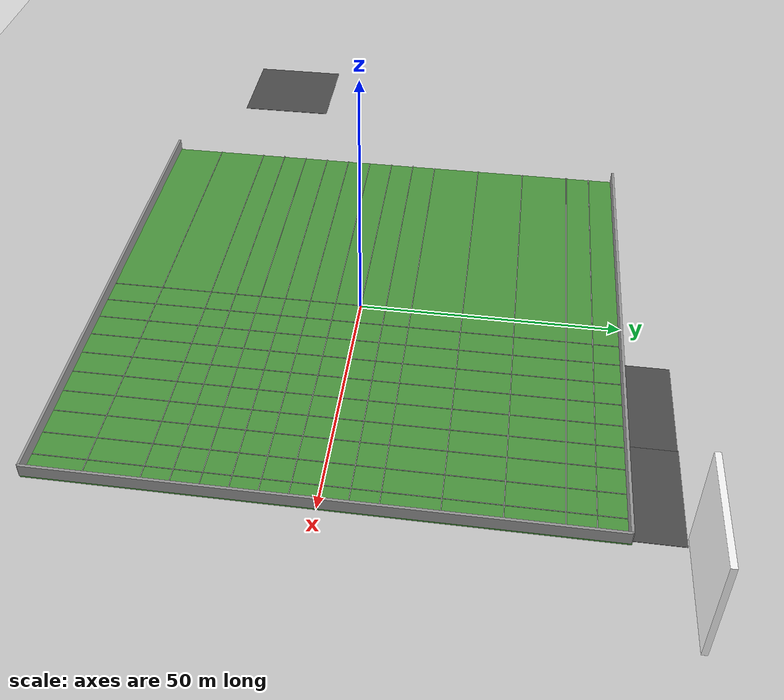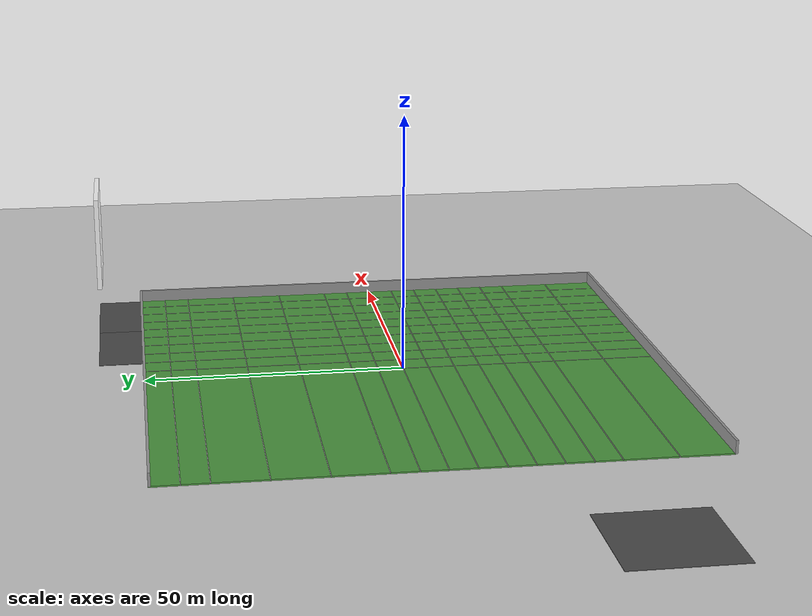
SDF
<sdf version="1.7">
 <world name="default">
  <model name="ground_plane">
   <static>1</static>
   <link name="link">
    <collision name="collision">
     <geometry><plane><normal>0 0 1</normal><size>100 100</size></plane></geometry>
     <surface><friction><ode><mu>100</mu><mu2>50</mu2></ode></friction></surface>
    </collision>
    <visual name="visual">
     <cast_shadows>0</cast_shadows>
     <geometry><plane><normal>0 0 1</normal><size>100 100</size></plane></geometry>
     <material>
      <script><uri>file://media/materials/scripts/gazebo.material</uri><name>Gazebo/Grey</name></script>
     </material>
    </visual>
   </link>
  </model>
  <model name="gridline100m">
   <pose>0.007876 -6.97538 0 0 -0 0</pose>
   <link name="Wall_2">
    <collision name="Wall_2_Collision">
     <geometry><box><size>100 0.15 0.15</size></box></geometry>
     <pose>0 0 0.075 0 -0 0</pose>
    </collision>
    <visual name="Wall_2_Visual">
     <pose>0 0 0.075 0 -0 0</pose>
     <geometry><box><size>100 0.15 0.15</size></box></geometry>
     <material>
      <script><uri>file://media/materials/scripts/gazebo.material</uri><name>Gazebo/Grey</name></script>
      <ambient>0 0 0 1</ambient>
     </material>
     <meta><layer>0</layer></meta>
    </visual>
    <pose>2e-06 -3.05812 0 0 -0 0</pose>
   </link>
   <static>1</static>
  </model>
  <model name="gridline100m_clone">
   <pose>0.013 3.08479 0 0 -0 0</pose>
   <link name="Wall_2">
    <collision name="Wall_2_Collision">
     <geometry><box><size>100 0.15 0.15</size></box></geometry>
     <pose>0 0 0.075 0 -0 0</pose>
    </collision>
    <visual name="Wall_2_Visual">
     <pose>0 0 0.075 0 -0 0</pose>
     <geometry><box><size>100 0.15 0.15</size></box></geometry>
     <material>
      <script><uri>file://media/materials/scripts/gazebo.material</uri><name>Gazebo/Grey</name></script>
      <ambient>0 0 0 1</ambient>
     </material>
     <meta><layer>0</layer></meta>
    </visual>
    <pose>2e-06 -3.05812 0 0 -0 0</pose>
   </link>
   <static>1</static>
  </model>
  <model name="gridline100m_clone_0">
   <pose>-0.011254 13.0129 0 0 -0 0</pose>
   <link name="Wall_2">
    <collision name="Wall_2_Collision">
     <geometry><box><size>100 0.15 0.15</size></box></geometry>
     <pose>0 0 0.075 0 -0 0</pose>
    </collision>
    <visual name="Wall_2_Visual">
     <pose>0 0 0.075 0 -0 0</pose>
     <geometry><box><size>100 0.15 0.15</size></box></geometry>
     <material>
      <script><uri>file://media/materials/scripts/gazebo.material</uri><name>Gazebo/Grey</name></script>
      <ambient>0 0 0 1</ambient>
     </material>
     <meta><layer>0</layer></meta>
    </visual>
    <pose>2e-06 -3.05812 0 0 -0 0</pose>
   </link>
   <static>1</static>
  </model>
  <model name="gridline100m_clone_0_clone">
   <link name="Wall_2">
    <pose>2e-06 -3.05812 0 0 -0 1.571</pose>
    <inertial>
     <mass>1</mass>
     <inertia><ixx>1</ixx><ixy>0</ixy><ixz>0</ixz><iyy>1</iyy><iyz>0</iyz><izz>1</izz></inertia>
    </inertial>
    <visual name="Wall_2_Visual">
     <pose>0 0 0.075 0 -0 0</pose>
     <geometry><box><size>100 0.15 0.15</size></box></geometry>
     <material>
      <script><uri>file://media/materials/scripts/gazebo.material</uri><name>Gazebo/Grey</name></script>
      <ambient>0 0 0 1</ambient>
      <shader type="pixel"><normal_map>__default__</normal_map></shader>
      <diffuse>0.7 0.7 0.7 1</diffuse>
      <specular>0.01 0.01 0.01 1</specular>
      <emissive>0 0 0 1</emissive>
     </material>
     <meta><layer>0</layer></meta>
     <cast_shadows>0</cast_shadows>
    </visual>
    <collision name="Wall_2_Collision">
     <pose>0 0 0.075 0 -0 0</pose>
     <geometry><box><size>100 0.15 0.15</size></box></geometry>
     <surface>
      <friction>
       <ode><mu>1</mu><mu2>1</mu2><fdir1>0 0 0</fdir1><slip1>0</slip1><slip2>0</slip2></ode>
       <torsional>
        <coefficient>1</coefficient>
        <patch_radius>0</patch_radius>
        <surface_radius>0</surface_radius>
        <use_patch_radius>1</use_patch_radius>
        <ode><slip>0</slip></ode>
       </torsional>
      </friction>
      <bounce><restitution_coefficient>0</restitution_coefficient><threshold>1e+06</threshold></bounce>
      <contact>
       <collide_without_contact>0</collide_without_contact>
       <collide_without_contact_bitmask>1</collide_without_contact_bitmask>
       <collide_bitmask>1</collide_bitmask>
       <ode>
        <soft_cfm>0</soft_cfm>
        <soft_erp>0.2</soft_erp>
        <kp>1e+13</kp>
        <kd>1</kd>
        <max_vel>0.01</max_vel>
        <min_depth>0</min_depth>
       </ode>
       <bullet>
        <split_impulse>1</split_impulse>
        <split_impulse_penetration_threshold>-0.01</split_impulse_penetration_threshold>
        <soft_cfm>0</soft_cfm>
        <soft_erp>0.2</soft_erp>
        <kp>1e+13</kp>
        <kd>1</kd>
       </bullet>
      </contact>
     </surface>
    </collision>
   </link>
   <static>1</static>
   <pose>9.93727 3.17557 0 0 -0 0</pose>
  </model>
  <model name="gridline100m_clone_0_clone_clone">
   <link name="Wall_2">
    <pose>2e-06 -3.05812 0 0 -0 1.571</pose>
    <inertial>
     <mass>1</mass>
     <inertia><ixx>1</ixx><ixy>0</ixy><ixz>0</ixz><iyy>1</iyy><iyz>0</iyz><izz>1</izz></inertia>
    </inertial>
    <visual name="Wall_2_Visual">
     <pose>0 0 0.075 0 -0 0</pose>
     <geometry><box><size>100 0.15 0.15</size></box></geometry>
     <material>
      <script><uri>file://media/materials/scripts/gazebo.material</uri><name>Gazebo/Grey</name></script>
      <ambient>0 0 0 1</ambient>
      <shader type="pixel"><normal_map>__default__</normal_map></shader>
      <diffuse>0.7 0.7 0.7 1</diffuse>
      <specular>0.01 0.01 0.01 1</specular>
      <emissive>0 0 0 1</emissive>
     </material>
     <meta><layer>0</layer></meta>
     <cast_shadows>0</cast_shadows>
    </visual>
    <collision name="Wall_2_Collision">
     <pose>0 0 0.075 0 -0 0</pose>
     <geometry><box><size>100 0.15 0.15</size></box></geometry>
     <surface>
      <friction>
       <ode><mu>1</mu><mu2>1</mu2><fdir1>0 0 0</fdir1><slip1>0</slip1><slip2>0</slip2></ode>
       <torsional>
        <coefficient>1</coefficient>
        <patch_radius>0</patch_radius>
        <surface_radius>0</surface_radius>
        <use_patch_radius>1</use_patch_radius>
        <ode><slip>0</slip></ode>
       </torsional>
      </friction>
      <bounce><restitution_coefficient>0</restitution_coefficient><threshold>1e+06</threshold></bounce>
      <contact>
       <collide_without_contact>0</collide_without_contact>
       <collide_without_contact_bitmask>1</collide_without_contact_bitmask>
       <collide_bitmask>1</collide_bitmask>
       <ode>
        <soft_cfm>0</soft_cfm>
        <soft_erp>0.2</soft_erp>
        <kp>1e+13</kp>
        <kd>1</kd>
        <max_vel>0.01</max_vel>
        <min_depth>0</min_depth>
       </ode>
       <bullet>
        <split_impulse>1</split_impulse>
        <split_impulse_penetration_threshold>-0.01</split_impulse_penetration_threshold>
        <soft_cfm>0</soft_cfm>
        <soft_erp>0.2</soft_erp>
        <kp>1e+13</kp>
        <kd>1</kd>
       </bullet>
      </contact>
     </surface>
    </collision>
   </link>
   <static>1</static>
   <pose>-0.105326 3.11667 0 0 -0 0</pose>
  </model>
  <model name="gridline100m_clone_0_clone_clone_1">
   <link name="Wall_2">
    <pose>2e-06 -3.05812 0 0 -0 1.571</pose>
    <inertial>
     <mass>1</mass>
     <inertia><ixx>1</ixx><ixy>0</ixy><ixz>0</ixz><iyy>1</iyy><iyz>0</iyz><izz>1</izz></inertia>
    </inertial>
    <visual name="Wall_2_Visual">
     <pose>0 0 0.075 0 -0 0</pose>
     <geometry><box><size>100 0.15 0.15</size></box></geometry>
     <material>
      <script><uri>file://media/materials/scripts/gazebo.material</uri><name>Gazebo/Grey</name></script>
      <ambient>0 0 0 1</ambient>
      <shader type="pixel"><normal_map>__default__</normal_map></shader>
      <diffuse>0.7 0.7 0.7 1</diffuse>
      <specular>0.01 0.01 0.01 1</specular>
      <emissive>0 0 0 1</emissive>
     </material>
     <meta><layer>0</layer></meta>
     <cast_shadows>0</cast_shadows>
    </visual>
    <collision name="Wall_2_Collision">
     <pose>0 0 0.075 0 -0 0</pose>
     <geometry><box><size>100 0.15 0.15</size></box></geometry>
     <surface>
      <friction>
       <ode><mu>1</mu><mu2>1</mu2><fdir1>0 0 0</fdir1><slip1>0</slip1><slip2>0</slip2></ode>
       <torsional>
        <coefficient>1</coefficient>
        <patch_radius>0</patch_radius>
        <surface_radius>0</surface_radius>
        <use_patch_radius>1</use_patch_radius>
        <ode><slip>0</slip></ode>
       </torsional>
      </friction>
      <bounce><restitution_coefficient>0</restitution_coefficient><threshold>1e+06</threshold></bounce>
      <contact>
       <collide_without_contact>0</collide_without_contact>
       <collide_without_contact_bitmask>1</collide_without_contact_bitmask>
       <collide_bitmask>1</collide_bitmask>
       <ode>
        <soft_cfm>0</soft_cfm>
        <soft_erp>0.2</soft_erp>
        <kp>1e+13</kp>
        <kd>1</kd>
        <max_vel>0.01</max_vel>
        <min_depth>0</min_depth>
       </ode>
       <bullet>
        <split_impulse>1</split_impulse>
        <split_impulse_penetration_threshold>-0.01</split_impulse_penetration_threshold>
        <soft_cfm>0</soft_cfm>
        <soft_erp>0.2</soft_erp>
        <kp>1e+13</kp>
        <kd>1</kd>
       </bullet>
      </contact>
     </surface>
    </collision>
   </link>
   <static>1</static>
   <pose>20.1147 3.10463 0 0 -0 0</pose>
  </model>
  <model name="gridline100m_clone_0_clone_clone_1_clone">
   <link name="Wall_2">
    <pose>2e-06 -3.05812 0 0 -0 1.571</pose>
    <inertial>
     <mass>1</mass>
     <inertia><ixx>1</ixx><ixy>0</ixy><ixz>0</ixz><iyy>1</iyy><iyz>0</iyz><izz>1</izz></inertia>
    </inertial>
    <visual name="Wall_2_Visual">
     <pose>0 0 0.075 0 -0 0</pose>
     <geometry><box><size>100 0.15 0.15</size></box></geometry>
     <material>
      <script><uri>file://media/materials/scripts/gazebo.material</uri><name>Gazebo/Grey</name></script>
      <ambient>0 0 0 1</ambient>
      <shader type="pixel"><normal_map>__default__</normal_map></shader>
      <diffuse>0.7 0.7 0.7 1</diffuse>
      <specular>0.01 0.01 0.01 1</specular>
      <emissive>0 0 0 1</emissive>
     </material>
     <meta><layer>0</layer></meta>
     <cast_shadows>0</cast_shadows>
    </visual>
    <collision name="Wall_2_Collision">
     <pose>0 0 0.075 0 -0 0</pose>
     <geometry><box><size>100 0.15 0.15</size></box></geometry>
     <surface>
      <friction>
       <ode><mu>1</mu><mu2>1</mu2><fdir1>0 0 0</fdir1><slip1>0</slip1><slip2>0</slip2></ode>
       <torsional>
        <coefficient>1</coefficient>
        <patch_radius>0</patch_radius>
        <surface_radius>0</surface_radius>
        <use_patch_radius>1</use_patch_radius>
        <ode><slip>0</slip></ode>
       </torsional>
      </friction>
      <bounce><restitution_coefficient>0</restitution_coefficient><threshold>1e+06</threshold></bounce>
      <contact>
       <collide_without_contact>0</collide_without_contact>
       <collide_without_contact_bitmask>1</collide_without_contact_bitmask>
       <collide_bitmask>1</collide_bitmask>
       <ode>
        <soft_cfm>0</soft_cfm>
        <soft_erp>0.2</soft_erp>
        <kp>1e+13</kp>
        <kd>1</kd>
        <max_vel>0.01</max_vel>
        <min_depth>0</min_depth>
       </ode>
       <bullet>
        <split_impulse>1</split_impulse>
        <split_impulse_penetration_threshold>-0.01</split_impulse_penetration_threshold>
        <soft_cfm>0</soft_cfm>
        <soft_erp>0.2</soft_erp>
        <kp>1e+13</kp>
        <kd>1</kd>
       </bullet>
      </contact>
     </surface>
    </collision>
   </link>
   <static>1</static>
   <pose>30.2145 3.13489 0 0 -0 0</pose>
  </model>
  <model name="gridline100m_clone_0_clone_clone_1_clone_clone">
   <link name="Wall_2">
    <pose>2e-06 -3.05812 0 0 -0 1.571</pose>
    <inertial>
     <mass>1</mass>
     <inertia><ixx>1</ixx><ixy>0</ixy><ixz>0</ixz><iyy>1</iyy><iyz>0</iyz><izz>1</izz></inertia>
    </inertial>
    <visual name="Wall_2_Visual">
     <pose>0 0 0.075 0 -0 0</pose>
     <geometry><box><size>100 0.15 0.15</size></box></geometry>
     <material>
      <script><uri>file://media/materials/scripts/gazebo.material</uri><name>Gazebo/Grey</name></script>
      <ambient>0 0 0 1</ambient>
      <shader type="pixel"><normal_map>__default__</normal_map></shader>
      <diffuse>0.7 0.7 0.7 1</diffuse>
      <specular>0.01 0.01 0.01 1</specular>
      <emissive>0 0 0 1</emissive>
     </material>
     <meta><layer>0</layer></meta>
     <cast_shadows>0</cast_shadows>
    </visual>
    <collision name="Wall_2_Collision">
     <pose>0 0 0.075 0 -0 0</pose>
     <geometry><box><size>100 0.15 0.15</size></box></geometry>
     <surface>
      <friction>
       <ode><mu>1</mu><mu2>1</mu2><fdir1>0 0 0</fdir1><slip1>0</slip1><slip2>0</slip2></ode>
       <torsional>
        <coefficient>1</coefficient>
        <patch_radius>0</patch_radius>
        <surface_radius>0</surface_radius>
        <use_patch_radius>1</use_patch_radius>
        <ode><slip>0</slip></ode>
       </torsional>
      </friction>
      <bounce><restitution_coefficient>0</restitution_coefficient><threshold>1e+06</threshold></bounce>
      <contact>
       <collide_without_contact>0</collide_without_contact>
       <collide_without_contact_bitmask>1</collide_without_contact_bitmask>
       <collide_bitmask>1</collide_bitmask>
       <ode>
        <soft_cfm>0</soft_cfm>
        <soft_erp>0.2</soft_erp>
        <kp>1e+13</kp>
        <kd>1</kd>
        <max_vel>0.01</max_vel>
        <min_depth>0</min_depth>
       </ode>
       <bullet>
        <split_impulse>1</split_impulse>
        <split_impulse_penetration_threshold>-0.01</split_impulse_penetration_threshold>
        <soft_cfm>0</soft_cfm>
        <soft_erp>0.2</soft_erp>
        <kp>1e+13</kp>
        <kd>1</kd>
       </bullet>
      </contact>
     </surface>
    </collision>
   </link>
   <static>1</static>
   <pose>40.3256 3.07649 0 0 -0 0</pose>
  </model>
  <model name="gridline100m_clone_1">
   <pose>-0.046986 -16.9532 0 0 -0 0</pose>
   <link name="Wall_2">
    <collision name="Wall_2_Collision">
     <geometry><box><size>100 0.15 0.15</size></box></geometry>
     <pose>0 0 0.075 0 -0 0</pose>
    </collision>
    <visual name="Wall_2_Visual">
     <pose>0 0 0.075 0 -0 0</pose>
     <geometry><box><size>100 0.15 0.15</size></box></geometry>
     <material>
      <script><uri>file://media/materials/scripts/gazebo.material</uri><name>Gazebo/Grey</name></script>
      <ambient>0 0 0 1</ambient>
     </material>
     <meta><layer>0</layer></meta>
    </visual>
    <pose>2e-06 -3.05812 0 0 -0 0</pose>
   </link>
   <static>1</static>
  </model>
  <model name="gridline100m_clone_1_clone">
   <pose>0.0391 -26.9723 0 0 -0 0</pose>
   <link name="Wall_2">
    <collision name="Wall_2_Collision">
     <geometry><box><size>100 0.15 0.15</size></box></geometry>
     <pose>0 0 0.075 0 -0 0</pose>
    </collision>
    <visual name="Wall_2_Visual">
     <pose>0 0 0.075 0 -0 0</pose>
     <geometry><box><size>100 0.15 0.15</size></box></geometry>
     <material>
      <script><uri>file://media/materials/scripts/gazebo.material</uri><name>Gazebo/Grey</name></script>
      <ambient>0 0 0 1</ambient>
     </material>
     <meta><layer>0</layer></meta>
    </visual>
    <pose>2e-06 -3.05812 0 0 -0 0</pose>
   </link>
   <static>1</static>
  </model>
  <model name="gridline100m_clone_1_clone_clone">
   <pose>-0.033098 -36.9108 0 0 -0 0</pose>
   <link name="Wall_2">
    <collision name="Wall_2_Collision">
     <geometry><box><size>100 0.15 0.15</size></box></geometry>
     <pose>0 0 0.075 0 -0 0</pose>
    </collision>
    <visual name="Wall_2_Visual">
     <pose>0 0 0.075 0 -0 0</pose>
     <geometry><box><size>100 0.15 0.15</size></box></geometry>
     <material>
      <script><uri>file://media/materials/scripts/gazebo.material</uri><name>Gazebo/Grey</name></script>
      <ambient>0 0 0 1</ambient>
     </material>
     <meta><layer>0</layer></meta>
    </visual>
    <pose>2e-06 -3.05812 0 0 -0 0</pose>
   </link>
   <static>1</static>
  </model>
  <model name="gridline100m_clone_0_clone_0">
   <pose>-0.012985 22.9729 0 0 -0 0</pose>
   <link name="Wall_2">
    <collision name="Wall_2_Collision">
     <geometry><box><size>100 0.15 0.15</size></box></geometry>
     <pose>0 0 0.075 0 -0 0</pose>
    </collision>
    <visual name="Wall_2_Visual">
     <pose>0 0 0.075 0 -0 0</pose>
     <geometry><box><size>100 0.15 0.15</size></box></geometry>
     <material>
      <script><uri>file://media/materials/scripts/gazebo.material</uri><name>Gazebo/Grey</name></script>
      <ambient>0 0 0 1</ambient>
     </material>
     <meta><layer>0</layer></meta>
    </visual>
    <pose>2e-06 -3.05812 0 0 -0 0</pose>
   </link>
   <static>1</static>
  </model>
  <model name="gridline100m_clone_0_clone_0_clone">
   <pose>-0.008378 33.0432 0 0 -0 0</pose>
   <link name="Wall_2">
    <collision name="Wall_2_Collision">
     <geometry><box><size>100 0.15 0.15</size></box></geometry>
     <pose>0 0 0.075 0 -0 0</pose>
    </collision>
    <visual name="Wall_2_Visual">
     <pose>0 0 0.075 0 -0 0</pose>
     <geometry><box><size>100 0.15 0.15</size></box></geometry>
     <material>
      <script><uri>file://media/materials/scripts/gazebo.material</uri><name>Gazebo/Grey</name></script>
      <ambient>0 0 0 1</ambient>
     </material>
     <meta><layer>0</layer></meta>
    </visual>
    <pose>2e-06 -3.05812 0 0 -0 0</pose>
   </link>
   <static>1</static>
  </model>
  <model name="gridline100m_clone_0_clone_0_clone_clone">
   <pose>-0.009803 42.9182 0 0 -0 0</pose>
   <link name="Wall_2">
    <collision name="Wall_2_Collision">
     <geometry><box><size>100 0.15 0.15</size></box></geometry>
     <pose>0 0 0.075 0 -0 0</pose>
    </collision>
    <visual name="Wall_2_Visual">
     <pose>0 0 0.075 0 -0 0</pose>
     <geometry><box><size>100 0.15 0.15</size></box></geometry>
     <material>
      <script><uri>file://media/materials/scripts/gazebo.material</uri><name>Gazebo/Grey</name></script>
      <ambient>0 0 0 1</ambient>
     </material>
     <meta><layer>0</layer></meta>
    </visual>
    <pose>2e-06 -3.05812 0 0 -0 0</pose>
   </link>
   <static>1</static>
  </model>
  <model name="100mfence_clone_clone_clone">
   <link name="Wall_0">
    <pose>-13.0161 -13.4589 0 0 -0 1.571</pose>
    <inertial>
     <mass>75000</mass>
     <inertia>
      <ixx>39203.1</ixx>
      <ixy>0</ixy>
      <ixz>0</ixz>
      <iyy>6.25391e+07</iyy>
      <iyz>0</iyz>
      <izz>6.25001e+07</izz>
     </inertia>
    </inertial>
    <visual name="Wall_0_Visual">
     <pose>0 0 1.25 0 -0 0</pose>
     <geometry><box><size>100 0.5 2.5</size></box></geometry>
     <material>
      <script><uri>file://media/materials/scripts/gazebo.material</uri><name>Gazebo/Grey</name></script>
      <ambient>0.5 0.5 0.5 1</ambient>
      <shader type="pixel"><normal_map>__default__</normal_map></shader>
      <diffuse>0.5 0.5 0.5 1</diffuse>
      <specular>0.5 0.5 0.5 1</specular>
      <emissive>0 0 0 1</emissive>
     </material>
     <meta><layer>0</layer></meta>
     <cast_shadows>0</cast_shadows>
    </visual>
    <collision name="Wall_0_Collision">
     <pose>0 0 1.25 0 -0 0</pose>
     <geometry><box><size>100 0.2 2.5</size></box></geometry>
     <surface>
      <friction>
       <ode><mu>1</mu><mu2>1</mu2><fdir1>0 0 0</fdir1><slip1>0</slip1><slip2>0</slip2></ode>
       <torsional>
        <coefficient>1</coefficient>
        <patch_radius>0</patch_radius>
        <surface_radius>0</surface_radius>
        <use_patch_radius>1</use_patch_radius>
        <ode><slip>0</slip></ode>
       </torsional>
      </friction>
      <bounce><restitution_coefficient>0</restitution_coefficient><threshold>1e+06</threshold></bounce>
      <contact>
       <collide_without_contact>0</collide_without_contact>
       <collide_without_contact_bitmask>1</collide_without_contact_bitmask>
       <collide_bitmask>1</collide_bitmask>
       <ode>
        <soft_cfm>0</soft_cfm>
        <soft_erp>0.2</soft_erp>
        <kp>1e+13</kp>
        <kd>1</kd>
        <max_vel>0.01</max_vel>
        <min_depth>0</min_depth>
       </ode>
       <bullet>
        <split_impulse>1</split_impulse>
        <split_impulse_penetration_threshold>-0.01</split_impulse_penetration_threshold>
        <soft_cfm>0</soft_cfm>
        <soft_erp>0.2</soft_erp>
        <kp>1e+13</kp>
        <kd>1</kd>
       </bullet>
      </contact>
     </surface>
    </collision>
   </link>
   <static>1</static>
   <pose>62.9584 13.4532 0 0 -0 0</pose>
  </model>
  <model name="100mfence">
   <link name="Wall_0">
    <pose>-2e-06 -1.2425 0 0 -0 0</pose>
    <inertial>
     <mass>1</mass>
     <inertia><ixx>1</ixx><ixy>0</ixy><ixz>0</ixz><iyy>1</iyy><iyz>0</iyz><izz>1</izz></inertia>
    </inertial>
    <visual name="Wall_0_Visual">
     <pose>0 0 1.25 0 -0 0</pose>
     <geometry><box><size>100 0.5 2.5</size></box></geometry>
     <material>
      <script><uri>file://media/materials/scripts/gazebo.material</uri><name>Gazebo/Grey</name></script>
      <ambient>0.5 0.5 0.5 1</ambient>
      <shader type="pixel"><normal_map>__default__</normal_map></shader>
      <diffuse>0.5 0.5 0.5 1</diffuse>
      <specular>0.5 0.5 0.5 1</specular>
      <emissive>0 0 0 1</emissive>
     </material>
     <meta><layer>0</layer></meta>
     <cast_shadows>0</cast_shadows>
    </visual>
    <collision name="Wall_0_Collision">
     <pose>0 0 1.25 0 -0 0</pose>
     <geometry><box><size>100 0.15 2.5</size></box></geometry>
     <surface>
      <friction>
       <ode><mu>1</mu><mu2>1</mu2><fdir1>0 0 0</fdir1><slip1>0</slip1><slip2>0</slip2></ode>
       <torsional>
        <coefficient>1</coefficient>
        <patch_radius>0</patch_radius>
        <surface_radius>0</surface_radius>
        <use_patch_radius>1</use_patch_radius>
        <ode><slip>0</slip></ode>
       </torsional>
      </friction>
      <bounce><restitution_coefficient>0</restitution_coefficient><threshold>1e+06</threshold></bounce>
      <contact>
       <collide_without_contact>0</collide_without_contact>
       <collide_without_contact_bitmask>1</collide_without_contact_bitmask>
       <collide_bitmask>1</collide_bitmask>
       <ode>
        <soft_cfm>0</soft_cfm>
        <soft_erp>0.2</soft_erp>
        <kp>1e+13</kp>
        <kd>1</kd>
        <max_vel>0.01</max_vel>
        <min_depth>0</min_depth>
       </ode>
       <bullet>
        <split_impulse>1</split_impulse>
        <split_impulse_penetration_threshold>-0.01</split_impulse_penetration_threshold>
        <soft_cfm>0</soft_cfm>
        <soft_erp>0.2</soft_erp>
        <kp>1e+13</kp>
        <kd>1</kd>
       </bullet>
      </contact>
     </surface>
    </collision>
   </link>
   <static>1</static>
   <pose>1.6e-05 -48.6826 0 0 -0 0</pose>
  </model>
  <model name="100mfence_clone">
   <link name="Wall_0">
    <pose>-2e-06 -1.2425 0 0 -0 0</pose>
    <inertial>
     <mass>1</mass>
     <inertia><ixx>1</ixx><ixy>0</ixy><ixz>0</ixz><iyy>1</iyy><iyz>0</iyz><izz>1</izz></inertia>
    </inertial>
    <visual name="Wall_0_Visual">
     <pose>0 0 1.25 0 -0 0</pose>
     <geometry><box><size>100 0.5 2.5</size></box></geometry>
     <material>
      <script><uri>file://media/materials/scripts/gazebo.material</uri><name>Gazebo/Grey</name></script>
      <ambient>0.5 0.5 0.5 1</ambient>
      <shader type="pixel"><normal_map>__default__</normal_map></shader>
      <diffuse>0.5 0.5 0.5 1</diffuse>
      <specular>0.5 0.5 0.5 1</specular>
      <emissive>0 0 0 1</emissive>
     </material>
     <meta><layer>0</layer></meta>
     <cast_shadows>0</cast_shadows>
    </visual>
    <collision name="Wall_0_Collision">
     <pose>0 0 1.25 0 -0 0</pose>
     <geometry><box><size>100 0.15 2.5</size></box></geometry>
     <surface>
      <friction>
       <ode><mu>1</mu><mu2>1</mu2><fdir1>0 0 0</fdir1><slip1>0</slip1><slip2>0</slip2></ode>
       <torsional>
        <coefficient>1</coefficient>
        <patch_radius>0</patch_radius>
        <surface_radius>0</surface_radius>
        <use_patch_radius>1</use_patch_radius>
        <ode><slip>0</slip></ode>
       </torsional>
      </friction>
      <bounce><restitution_coefficient>0</restitution_coefficient><threshold>1e+06</threshold></bounce>
      <contact>
       <collide_without_contact>0</collide_without_contact>
       <collide_without_contact_bitmask>1</collide_without_contact_bitmask>
       <collide_bitmask>1</collide_bitmask>
       <ode>
        <soft_cfm>0</soft_cfm>
        <soft_erp>0.2</soft_erp>
        <kp>1e+13</kp>
        <kd>1</kd>
        <max_vel>0.01</max_vel>
        <min_depth>0</min_depth>
       </ode>
       <bullet>
        <split_impulse>1</split_impulse>
        <split_impulse_penetration_threshold>-0.01</split_impulse_penetration_threshold>
        <soft_cfm>0</soft_cfm>
        <soft_erp>0.2</soft_erp>
        <kp>1e+13</kp>
        <kd>1</kd>
       </bullet>
      </contact>
     </surface>
    </collision>
   </link>
   <static>1</static>
   <pose>0.000191 51.1672 0 0 -0 0</pose>
  </model>
  <model name="gridline100m_clone_0_clone_clone_0_clone_clone_clone_clone_clone_3">
   <link name="Wall_2">
    <pose>2e-06 -3.05812 0 0 -0 1.571</pose>
    <inertial>
     <mass>1</mass>
     <inertia><ixx>1</ixx><ixy>0</ixy><ixz>0</ixz><iyy>1</iyy><iyz>0</iyz><izz>1</izz></inertia>
    </inertial>
    <visual name="Wall_2_Visual">
     <pose>0 0 0.075 0 -0 0</pose>
     <geometry><box><size>100 0.15 0.15</size></box></geometry>
     <material>
      <script><uri>file://media/materials/scripts/gazebo.material</uri><name>Gazebo/Grey</name></script>
      <ambient>0 0 0 1</ambient>
      <shader type="pixel"><normal_map>__default__</normal_map></shader>
      <diffuse>0.7 0.7 0.7 1</diffuse>
      <specular>0.01 0.01 0.01 1</specular>
      <emissive>0 0 0 1</emissive>
     </material>
     <meta><layer>0</layer></meta>
     <cast_shadows>0</cast_shadows>
    </visual>
    <collision name="Wall_2_Collision">
     <pose>0 0 0.075 0 -0 0</pose>
     <geometry><box><size>100 0.15 0.15</size></box></geometry>
     <surface>
      <friction>
       <ode><mu>1</mu><mu2>1</mu2><fdir1>0 0 0</fdir1><slip1>0</slip1><slip2>0</slip2></ode>
       <torsional>
        <coefficient>1</coefficient>
        <patch_radius>0</patch_radius>
        <surface_radius>0</surface_radius>
        <use_patch_radius>1</use_patch_radius>
        <ode><slip>0</slip></ode>
       </torsional>
      </friction>
      <bounce><restitution_coefficient>0</restitution_coefficient><threshold>1e+06</threshold></bounce>
      <contact>
       <collide_without_contact>0</collide_without_contact>
       <collide_without_contact_bitmask>1</collide_without_contact_bitmask>
       <collide_bitmask>1</collide_bitmask>
       <ode>
        <soft_cfm>0</soft_cfm>
        <soft_erp>0.2</soft_erp>
        <kp>1e+13</kp>
        <kd>1</kd>
        <max_vel>0.01</max_vel>
        <min_depth>0</min_depth>
       </ode>
       <bullet>
        <split_impulse>1</split_impulse>
        <split_impulse_penetration_threshold>-0.01</split_impulse_penetration_threshold>
        <soft_cfm>0</soft_cfm>
        <soft_erp>0.2</soft_erp>
        <kp>1e+13</kp>
        <kd>1</kd>
       </bullet>
      </contact>
     </surface>
    </collision>
   </link>
   <static>1</static>
   <pose>4.91478 3.18273 0 0 -0 0</pose>
  </model>
  <model name="gridline100m_clone_0_clone_clone_0_clone_clone_clone_clone_clone_4">
   <link name="Wall_2">
    <pose>2e-06 -3.05812 0 0 -0 1.571</pose>
    <inertial>
     <mass>1</mass>
     <inertia><ixx>1</ixx><ixy>0</ixy><ixz>0</ixz><iyy>1</iyy><iyz>0</iyz><izz>1</izz></inertia>
    </inertial>
    <visual name="Wall_2_Visual">
     <pose>0 0 0.075 0 -0 0</pose>
     <geometry><box><size>100 0.15 0.15</size></box></geometry>
     <material>
      <script><uri>file://media/materials/scripts/gazebo.material</uri><name>Gazebo/Grey</name></script>
      <ambient>0 0 0 1</ambient>
      <shader type="pixel"><normal_map>__default__</normal_map></shader>
      <diffuse>0.7 0.7 0.7 1</diffuse>
      <specular>0.01 0.01 0.01 1</specular>
      <emissive>0 0 0 1</emissive>
     </material>
     <meta><layer>0</layer></meta>
     <cast_shadows>0</cast_shadows>
    </visual>
    <collision name="Wall_2_Collision">
     <pose>0 0 0.075 0 -0 0</pose>
     <geometry><box><size>100 0.15 0.15</size></box></geometry>
     <surface>
      <friction>
       <ode><mu>1</mu><mu2>1</mu2><fdir1>0 0 0</fdir1><slip1>0</slip1><slip2>0</slip2></ode>
       <torsional>
        <coefficient>1</coefficient>
        <patch_radius>0</patch_radius>
        <surface_radius>0</surface_radius>
        <use_patch_radius>1</use_patch_radius>
        <ode><slip>0</slip></ode>
       </torsional>
      </friction>
      <bounce><restitution_coefficient>0</restitution_coefficient><threshold>1e+06</threshold></bounce>
      <contact>
       <collide_without_contact>0</collide_without_contact>
       <collide_without_contact_bitmask>1</collide_without_contact_bitmask>
       <collide_bitmask>1</collide_bitmask>
       <ode>
        <soft_cfm>0</soft_cfm>
        <soft_erp>0.2</soft_erp>
        <kp>1e+13</kp>
        <kd>1</kd>
        <max_vel>0.01</max_vel>
        <min_depth>0</min_depth>
       </ode>
       <bullet>
        <split_impulse>1</split_impulse>
        <split_impulse_penetration_threshold>-0.01</split_impulse_penetration_threshold>
        <soft_cfm>0</soft_cfm>
        <soft_erp>0.2</soft_erp>
        <kp>1e+13</kp>
        <kd>1</kd>
       </bullet>
      </contact>
     </surface>
    </collision>
   </link>
   <static>1</static>
   <pose>14.9935 3.09592 0 0 -0 0</pose>
  </model>
  <model name="gridline100m_clone_0_clone_clone_0_clone_clone_clone_clone_clone_5">
   <link name="Wall_2">
    <pose>2e-06 -3.05812 0 0 -0 1.571</pose>
    <inertial>
     <mass>1</mass>
     <inertia><ixx>1</ixx><ixy>0</ixy><ixz>0</ixz><iyy>1</iyy><iyz>0</iyz><izz>1</izz></inertia>
    </inertial>
    <visual name="Wall_2_Visual">
     <pose>0 0 0.075 0 -0 0</pose>
     <geometry><box><size>100 0.15 0.15</size></box></geometry>
     <material>
      <script><uri>file://media/materials/scripts/gazebo.material</uri><name>Gazebo/Grey</name></script>
      <ambient>0 0 0 1</ambient>
      <shader type="pixel"><normal_map>__default__</normal_map></shader>
      <diffuse>0.7 0.7 0.7 1</diffuse>
      <specular>0.01 0.01 0.01 1</specular>
      <emissive>0 0 0 1</emissive>
     </material>
     <meta><layer>0</layer></meta>
     <cast_shadows>0</cast_shadows>
    </visual>
    <collision name="Wall_2_Collision">
     <pose>0 0 0.075 0 -0 0</pose>
     <geometry><box><size>100 0.15 0.15</size></box></geometry>
     <surface>
      <friction>
       <ode><mu>1</mu><mu2>1</mu2><fdir1>0 0 0</fdir1><slip1>0</slip1><slip2>0</slip2></ode>
       <torsional>
        <coefficient>1</coefficient>
        <patch_radius>0</patch_radius>
        <surface_radius>0</surface_radius>
        <use_patch_radius>1</use_patch_radius>
        <ode><slip>0</slip></ode>
       </torsional>
      </friction>
      <bounce><restitution_coefficient>0</restitution_coefficient><threshold>1e+06</threshold></bounce>
      <contact>
       <collide_without_contact>0</collide_without_contact>
       <collide_without_contact_bitmask>1</collide_without_contact_bitmask>
       <collide_bitmask>1</collide_bitmask>
       <ode>
        <soft_cfm>0</soft_cfm>
        <soft_erp>0.2</soft_erp>
        <kp>1e+13</kp>
        <kd>1</kd>
        <max_vel>0.01</max_vel>
        <min_depth>0</min_depth>
       </ode>
       <bullet>
        <split_impulse>1</split_impulse>
        <split_impulse_penetration_threshold>-0.01</split_impulse_penetration_threshold>
        <soft_cfm>0</soft_cfm>
        <soft_erp>0.2</soft_erp>
        <kp>1e+13</kp>
        <kd>1</kd>
       </bullet>
      </contact>
     </surface>
    </collision>
   </link>
   <static>1</static>
   <pose>25.2142 3.13106 0 0 -0 0</pose>
  </model>
  <model name="gridline100m_clone_0_clone_clone_0_clone_clone_clone_clone_clone_6">
   <link name="Wall_2">
    <pose>2e-06 -3.05812 0 0 -0 1.571</pose>
    <inertial>
     <mass>1</mass>
     <inertia><ixx>1</ixx><ixy>0</ixy><ixz>0</ixz><iyy>1</iyy><iyz>0</iyz><izz>1</izz></inertia>
    </inertial>
    <visual name="Wall_2_Visual">
     <pose>0 0 0.075 0 -0 0</pose>
     <geometry><box><size>100 0.15 0.15</size></box></geometry>
     <material>
      <script><uri>file://media/materials/scripts/gazebo.material</uri><name>Gazebo/Grey</name></script>
      <ambient>0 0 0 1</ambient>
      <shader type="pixel"><normal_map>__default__</normal_map></shader>
      <diffuse>0.7 0.7 0.7 1</diffuse>
      <specular>0.01 0.01 0.01 1</specular>
      <emissive>0 0 0 1</emissive>
     </material>
     <meta><layer>0</layer></meta>
     <cast_shadows>0</cast_shadows>
    </visual>
    <collision name="Wall_2_Collision">
     <pose>0 0 0.075 0 -0 0</pose>
     <geometry><box><size>100 0.15 0.15</size></box></geometry>
     <surface>
      <friction>
       <ode><mu>1</mu><mu2>1</mu2><fdir1>0 0 0</fdir1><slip1>0</slip1><slip2>0</slip2></ode>
       <torsional>
        <coefficient>1</coefficient>
        <patch_radius>0</patch_radius>
        <surface_radius>0</surface_radius>
        <use_patch_radius>1</use_patch_radius>
        <ode><slip>0</slip></ode>
       </torsional>
      </friction>
      <bounce><restitution_coefficient>0</restitution_coefficient><threshold>1e+06</threshold></bounce>
      <contact>
       <collide_without_contact>0</collide_without_contact>
       <collide_without_contact_bitmask>1</collide_without_contact_bitmask>
       <collide_bitmask>1</collide_bitmask>
       <ode>
        <soft_cfm>0</soft_cfm>
        <soft_erp>0.2</soft_erp>
        <kp>1e+13</kp>
        <kd>1</kd>
        <max_vel>0.01</max_vel>
        <min_depth>0</min_depth>
       </ode>
       <bullet>
        <split_impulse>1</split_impulse>
        <split_impulse_penetration_threshold>-0.01</split_impulse_penetration_threshold>
        <soft_cfm>0</soft_cfm>
        <soft_erp>0.2</soft_erp>
        <kp>1e+13</kp>
        <kd>1</kd>
       </bullet>
      </contact>
     </surface>
    </collision>
   </link>
   <static>1</static>
   <pose>35.1005 3.20968 0 0 -0 0</pose>
  </model>
  <model name="gridline100m_clone_0_clone_clone_0_clone_clone_clone_clone_clone_7">
   <link name="Wall_2">
    <pose>2e-06 -3.05812 0 0 -0 1.571</pose>
    <inertial>
     <mass>1</mass>
     <inertia><ixx>1</ixx><ixy>0</ixy><ixz>0</ixz><iyy>1</iyy><iyz>0</iyz><izz>1</izz></inertia>
    </inertial>
    <visual name="Wall_2_Visual">
     <pose>0 0 0.075 0 -0 0</pose>
     <geometry><box><size>100 0.15 0.15</size></box></geometry>
     <material>
      <script><uri>file://media/materials/scripts/gazebo.material</uri><name>Gazebo/Grey</name></script>
      <ambient>0 0 0 1</ambient>
      <shader type="pixel"><normal_map>__default__</normal_map></shader>
      <diffuse>0.7 0.7 0.7 1</diffuse>
      <specular>0.01 0.01 0.01 1</specular>
      <emissive>0 0 0 1</emissive>
     </material>
     <meta><layer>0</layer></meta>
     <cast_shadows>0</cast_shadows>
    </visual>
    <collision name="Wall_2_Collision">
     <pose>0 0 0.075 0 -0 0</pose>
     <geometry><box><size>100 0.15 0.15</size></box></geometry>
     <surface>
      <friction>
       <ode><mu>1</mu><mu2>1</mu2><fdir1>0 0 0</fdir1><slip1>0</slip1><slip2>0</slip2></ode>
       <torsional>
        <coefficient>1</coefficient>
        <patch_radius>0</patch_radius>
        <surface_radius>0</surface_radius>
        <use_patch_radius>1</use_patch_radius>
        <ode><slip>0</slip></ode>
       </torsional>
      </friction>
      <bounce><restitution_coefficient>0</restitution_coefficient><threshold>1e+06</threshold></bounce>
      <contact>
       <collide_without_contact>0</collide_without_contact>
       <collide_without_contact_bitmask>1</collide_without_contact_bitmask>
       <collide_bitmask>1</collide_bitmask>
       <ode>
        <soft_cfm>0</soft_cfm>
        <soft_erp>0.2</soft_erp>
        <kp>1e+13</kp>
        <kd>1</kd>
        <max_vel>0.01</max_vel>
        <min_depth>0</min_depth>
       </ode>
       <bullet>
        <split_impulse>1</split_impulse>
        <split_impulse_penetration_threshold>-0.01</split_impulse_penetration_threshold>
        <soft_cfm>0</soft_cfm>
        <soft_erp>0.2</soft_erp>
        <kp>1e+13</kp>
        <kd>1</kd>
       </bullet>
      </contact>
     </surface>
    </collision>
   </link>
   <static>1</static>
   <pose>45.3197 3.2129 0 0 -0 0</pose>
  </model>
  <model name="gridline100m_clone_1_clone_clone_clone_1">
   <pose>-0.066963 -21.9982 0 0 -0 0</pose>
   <link name="Wall_2">
    <collision name="Wall_2_Collision">
     <geometry><box><size>100 0.15 0.15</size></box></geometry>
     <pose>0 0 0.075 0 -0 0</pose>
    </collision>
    <visual name="Wall_2_Visual">
     <pose>0 0 0.075 0 -0 0</pose>
     <geometry><box><size>100 0.15 0.15</size></box></geometry>
     <material>
      <script><uri>file://media/materials/scripts/gazebo.material</uri><name>Gazebo/Grey</name></script>
      <ambient>0 0 0 1</ambient>
     </material>
     <meta><layer>0</layer></meta>
    </visual>
    <pose>2e-06 -3.05812 0 0 -0 0</pose>
   </link>
   <static>1</static>
  </model>
  <model name="gridline100m_clone_1_clone_clone_clone_2">
   <pose>0.047636 -11.9544 0 0 -0 0</pose>
   <link name="Wall_2">
    <collision name="Wall_2_Collision">
     <geometry><box><size>100 0.15 0.15</size></box></geometry>
     <pose>0 0 0.075 0 -0 0</pose>
    </collision>
    <visual name="Wall_2_Visual">
     <pose>0 0 0.075 0 -0 0</pose>
     <geometry><box><size>100 0.15 0.15</size></box></geometry>
     <material>
      <script><uri>file://media/materials/scripts/gazebo.material</uri><name>Gazebo/Grey</name></script>
      <ambient>0 0 0 1</ambient>
     </material>
     <meta><layer>0</layer></meta>
    </visual>
    <pose>2e-06 -3.05812 0 0 -0 0</pose>
   </link>
   <static>1</static>
  </model>
  <model name="gridline100m_clone_1_clone_clone_clone_3">
   <pose>0.201548 -1.92732 0 0 -0 0</pose>
   <link name="Wall_2">
    <collision name="Wall_2_Collision">
     <geometry><box><size>100 0.15 0.15</size></box></geometry>
     <pose>0 0 0.075 0 -0 0</pose>
    </collision>
    <visual name="Wall_2_Visual">
     <pose>0 0 0.075 0 -0 0</pose>
     <geometry><box><size>100 0.15 0.15</size></box></geometry>
     <material>
      <script><uri>file://media/materials/scripts/gazebo.material</uri><name>Gazebo/Grey</name></script>
      <ambient>0 0 0 1</ambient>
     </material>
     <meta><layer>0</layer></meta>
    </visual>
    <pose>2e-06 -3.05812 0 0 -0 0</pose>
   </link>
   <static>1</static>
  </model>
  <model name="gridline100m_clone_1_clone_clone_clone_4">
   <pose>-0.128296 7.99348 0 0 -0 0</pose>
   <link name="Wall_2">
    <collision name="Wall_2_Collision">
     <geometry><box><size>100 0.15 0.15</size></box></geometry>
     <pose>0 0 0.075 0 -0 0</pose>
    </collision>
    <visual name="Wall_2_Visual">
     <pose>0 0 0.075 0 -0 0</pose>
     <geometry><box><size>100 0.15 0.15</size></box></geometry>
     <material>
      <script><uri>file://media/materials/scripts/gazebo.material</uri><name>Gazebo/Grey</name></script>
      <ambient>0 0 0 1</ambient>
     </material>
     <meta><layer>0</layer></meta>
    </visual>
    <pose>2e-06 -3.05812 0 0 -0 0</pose>
   </link>
   <static>1</static>
  </model>
  <model name="gridline100m_clone_1_clone_clone_clone_8">
   <pose>-0.055619 47.8828 0 0 -0 0</pose>
   <link name="Wall_2">
    <collision name="Wall_2_Collision">
     <geometry><box><size>100 0.15 0.15</size></box></geometry>
     <pose>0 0 0.075 0 -0 0</pose>
    </collision>
    <visual name="Wall_2_Visual">
     <pose>0 0 0.075 0 -0 0</pose>
     <geometry><box><size>100 0.15 0.15</size></box></geometry>
     <material>
      <script><uri>file://media/materials/scripts/gazebo.material</uri><name>Gazebo/Grey</name></script>
      <ambient>0 0 0 1</ambient>
     </material>
     <meta><layer>0</layer></meta>
    </visual>
    <pose>2e-06 -3.05812 0 0 -0 0</pose>
   </link>
   <static>1</static>
  </model>
  <model name="asphalt_plane">
   <static>1</static>
   <link name="link">
    <collision name="collision"><geometry><box><size>20 20 0.1</size></box></geometry></collision>
    <visual name="visual">
     <cast_shadows>0</cast_shadows>
     <geometry><box><size>20 20 0.1</size></box></geometry>
     <material>
      <script>
       <uri>model://asphalt_plane/materials/scripts</uri>
       <uri>model://asphalt_plane/materials/textures</uri>
       <name>vrc/asphalt</name>
      </script>
     </material>
    </visual>
   </link>
   <pose>-80.2255 -28.729 0 0 -0 0</pose>
  </model>
  <model name="grass_100by100">
   <link name="link_0">
    <gravity>0</gravity>
    <inertial>
     <mass>1</mass>
     <inertia><ixx>1</ixx><ixy>0</ixy><ixz>0</ixz><iyy>1</iyy><iyz>0</iyz><izz>1</izz></inertia>
    </inertial>
    <visual name="visual">
     <geometry><box><size>100 100 1</size></box></geometry>
     <material>
      <lighting>1</lighting>
      <script>
       <uri>model://grass_100by100/materials/scripts</uri>
       <uri>model://grass_100by100/materials/textures</uri>
       <name>model/GrassTexture</name>
      </script>
      <shader type="pixel"><normal_map>__default__</normal_map></shader>
      <ambient>0.3 0.3 0.3 1</ambient>
      <diffuse>0.7 0.7 0.7 1</diffuse>
      <specular>0.01 0.01 0.01 1</specular>
      <emissive>0 0 0 1</emissive>
     </material>
     <cast_shadows>0</cast_shadows>
    </visual>
   </link>
   <static>1</static>
   <allow_auto_disable>0</allow_auto_disable>
   <pose>0.213794 0.135044 -0.406954 0 -0 0</pose>
  </model>
  <model name="roboslaves_logo_clone">
   <link name="link_0">
    <pose>0 0 0 0 -0 1.571</pose>
    <inertial>
     <mass>1</mass>
     <inertia><ixx>1</ixx><ixy>0</ixy><ixz>0</ixz><iyy>1</iyy><iyz>0</iyz><izz>1</izz></inertia>
    </inertial>
    <visual name="visual">
     <geometry><box><size>20 1 20</size></box></geometry>
     <material>
      <lighting>1</lighting>
      <script>
       <uri>model://roboslaves_logo/materials/scripts</uri>
       <uri>model://roboslaves_logo/materials/textures</uri>
       <name>model/RoboSlaves</name>
      </script>
      <shader type="pixel"><normal_map>__default__</normal_map></shader>
      <ambient>1 1 1 1</ambient>
      <diffuse>1 1 1 1</diffuse>
      <specular>1 1 1 1</specular>
      <emissive>1 1 1 1</emissive>
     </material>
     <cast_shadows>0</cast_shadows>
    </visual>
   </link>
   <static>1</static>
   <pose>60.2529 58.7114 12.9885 0 -0 1.57099</pose>
  </model>
  <model name="asphalt_plane_3">
   <static>1</static>
   <link name="link">
    <collision name="collision"><geometry><box><size>20 20 0.1</size></box></geometry></collision>
    <visual name="visual">
     <cast_shadows>0</cast_shadows>
     <geometry><box><size>20 20 0.1</size></box></geometry>
     <material>
      <script>
       <uri>model://asphalt_plane/materials/scripts</uri>
       <uri>model://asphalt_plane/materials/textures</uri>
       <name>vrc/asphalt</name>
      </script>
     </material>
    </visual>
   </link>
   <pose>19.7582 48.6335 0 0 -0 0</pose>
  </model>
  <model name="asphalt_plane_4">
   <static>1</static>
   <link name="link">
    <collision name="collision"><geometry><box><size>20 20 0.1</size></box></geometry></collision>
    <visual name="visual">
     <cast_shadows>0</cast_shadows>
     <geometry><box><size>20 20 0.1</size></box></geometry>
     <material>
      <script>
       <uri>model://asphalt_plane/materials/scripts</uri>
       <uri>model://asphalt_plane/materials/textures</uri>
       <name>vrc/asphalt</name>
      </script>
     </material>
    </visual>
   </link>
   <pose>39.6181 48.7483 0 0 -0 0</pose>
  </model>
 </world>
</sdf>
